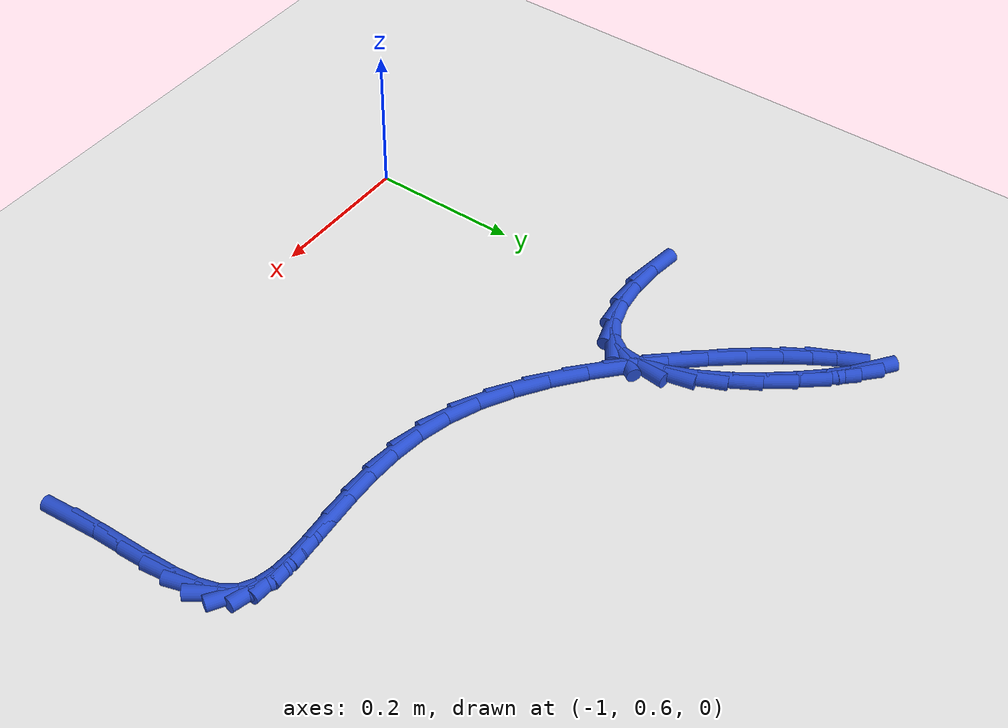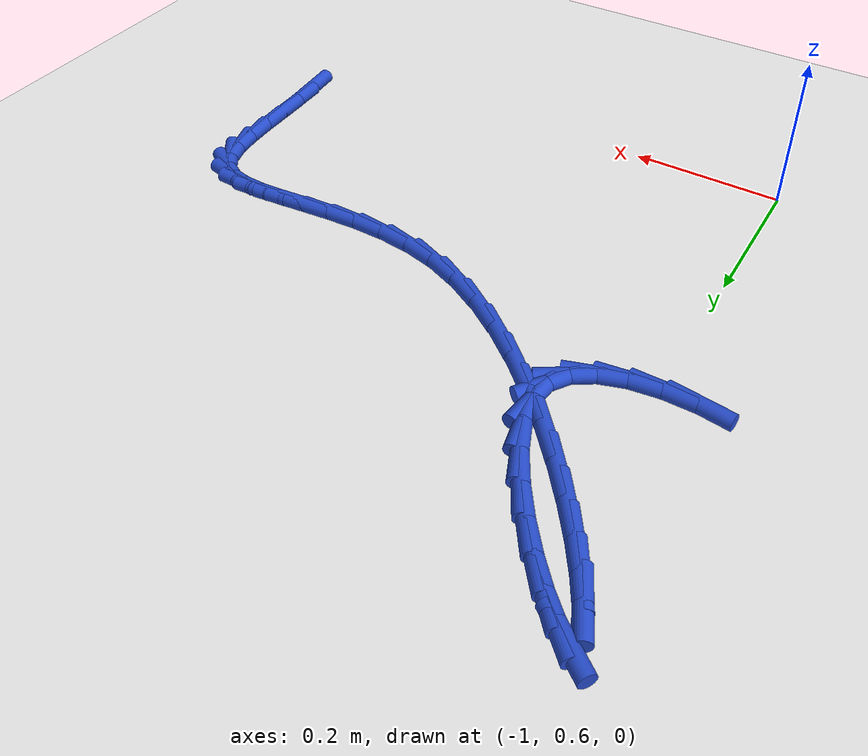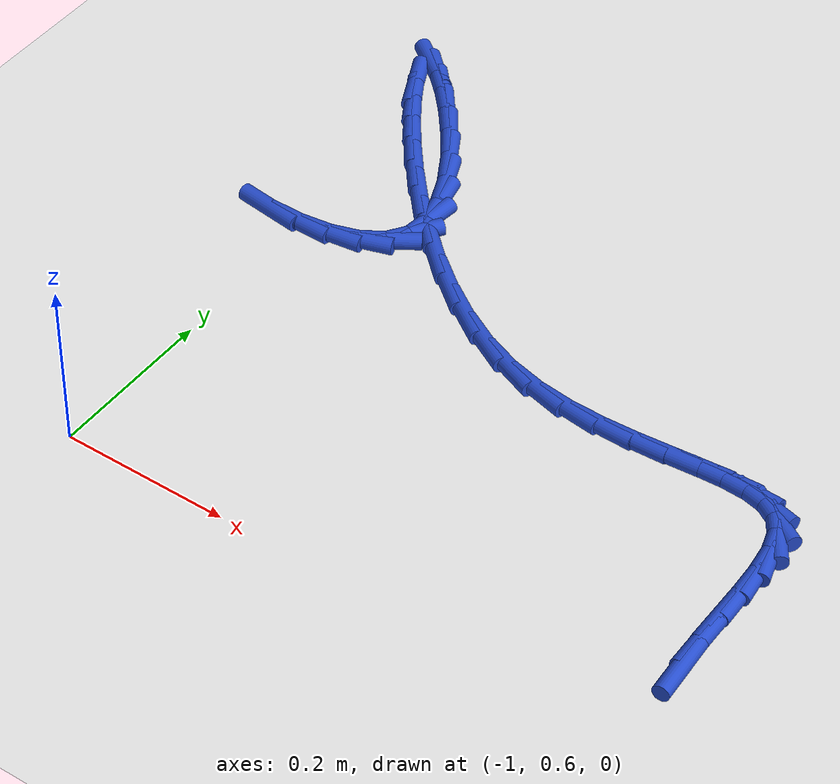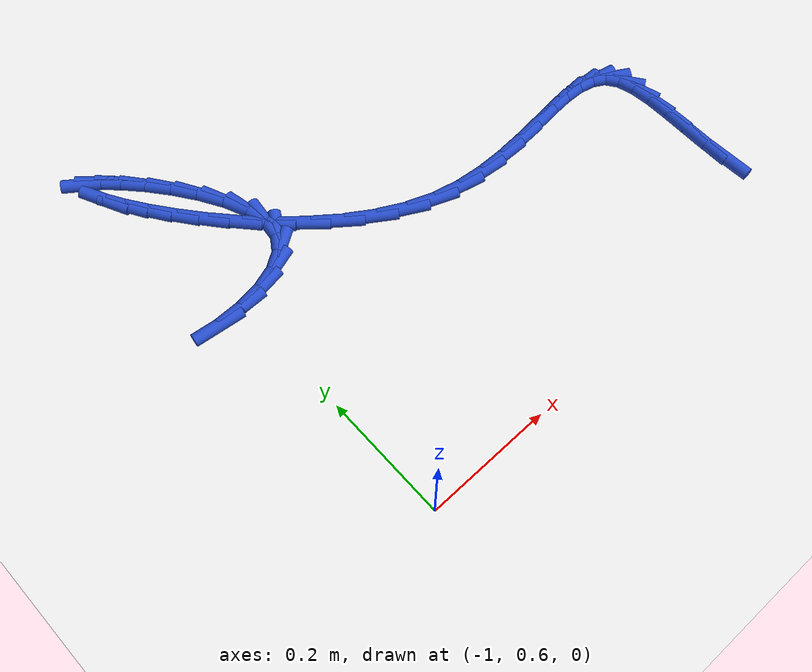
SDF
<sdf version="1.6">
 <world name="default">
  <model name="ground_plane">
   <static>1</static>
   <link name="link">
    <collision name="collision">
     <geometry><plane><normal>0 0 1</normal><size>100 100</size></plane></geometry>
     <surface><friction><ode><mu>100</mu><mu2>50</mu2></ode></friction></surface>
    </collision>
    <visual name="visual">
     <cast_shadows>0</cast_shadows>
     <geometry><plane><normal>0 0 1</normal><size>100 100</size></plane></geometry>
     <material>
      <script><uri>file://media/materials/scripts/gazebo.material</uri><name>Gazebo/WhiteGlow</name></script>
     </material>
    </visual>
   </link>
  </model>
  <model name="line">
   <link name="link_23">
    <pose>-0.3080963227162937 0.6952159774258417 0.01 0 1.57 -1.4997063180696923</pose>
    <collision name="collision">
     <geometry><cylinder><radius>0.01</radius><length>0.08</length></cylinder></geometry>
    </collision>
    <visual name="visual">
     <material>
      <script><name>Gazebo/Blue</name><uri>file://media/materials/scripts/gazebo.material</uri></script>
     </material>
     <geometry><cylinder><radius>0.01</radius><length>0.08</length></cylinder></geometry>
    </visual>
   </link>
   <link name="link_24">
    <pose>-0.31083687575884517 0.733701480655925 0.01 0 1.57 -1.5477143105425735</pose>
    <collision name="collision">
     <geometry><cylinder><radius>0.01</radius><length>0.08</length></cylinder></geometry>
    </collision>
    <visual name="visual">
     <material>
      <script><name>Gazebo/Blue</name><uri>file://media/materials/scripts/gazebo.material</uri></script>
     </material>
     <geometry><cylinder><radius>0.01</radius><length>0.08</length></cylinder></geometry>
    </visual>
   </link>
   <link name="link_25">
    <pose>-0.3117316999992263 0.7724617566341369 0.01 0 1.57 -1.5579819994210853</pose>
    <collision name="collision">
     <geometry><cylinder><radius>0.01</radius><length>0.08</length></cylinder></geometry>
    </collision>
    <visual name="visual">
     <material>
      <script><name>Gazebo/Blue</name><uri>file://media/materials/scripts/gazebo.material</uri></script>
     </material>
     <geometry><cylinder><radius>0.01</radius><length>0.08</length></cylinder></geometry>
    </visual>
   </link>
   <link name="link_26">
    <pose>-0.31221304113187165 0.8100224316341413 0.01 0 1.57 -1.5278234976914895</pose>
    <collision name="collision">
     <geometry><cylinder><radius>0.01</radius><length>0.08</length></cylinder></geometry>
    </collision>
    <visual name="visual">
     <material>
      <script><name>Gazebo/Blue</name><uri>file://media/materials/scripts/gazebo.material</uri></script>
     </material>
     <geometry><cylinder><radius>0.01</radius><length>0.08</length></cylinder></geometry>
    </visual>
   </link>
   <link name="link_27">
    <pose>-0.31371314485121593 0.8449091319296029 0.01 0 1.57 -1.4429571897700708</pose>
    <collision name="collision">
     <geometry><cylinder><radius>0.01</radius><length>0.08</length></cylinder></geometry>
    </collision>
    <visual name="visual">
     <material>
      <script><name>Gazebo/Blue</name><uri>file://media/materials/scripts/gazebo.material</uri></script>
     </material>
     <geometry><cylinder><radius>0.01</radius><length>0.08</length></cylinder></geometry>
    </visual>
   </link>
   <link name="link_28">
    <pose>-0.31766425685169386 0.8756474837941864 0.01 0 1.57 -1.2684291036820492</pose>
    <collision name="collision">
     <geometry><cylinder><radius>0.01</radius><length>0.08</length></cylinder></geometry>
    </collision>
    <visual name="visual">
     <material>
      <script><name>Gazebo/Blue</name><uri>file://media/materials/scripts/gazebo.material</uri></script>
     </material>
     <geometry><cylinder><radius>0.01</radius><length>0.08</length></cylinder></geometry>
    </visual>
   </link>
   <link name="link_29">
    <pose>-0.32549862282774 0.900763113501556 0.01 0 1.57 -0.9441774064784049</pose>
    <collision name="collision">
     <geometry><cylinder><radius>0.01</radius><length>0.08</length></cylinder></geometry>
    </collision>
    <visual name="visual">
     <material>
      <script><name>Gazebo/Blue</name><uri>file://media/materials/scripts/gazebo.material</uri></script>
     </material>
     <geometry><cylinder><radius>0.01</radius><length>0.08</length></cylinder></geometry>
    </visual>
   </link>
   <link name="link_30">
    <pose>-0.33859656596574617 0.9188554707817513 0.01 0 1.57 -0.5353127438071704</pose>
    <collision name="collision">
     <geometry><cylinder><radius>0.01</radius><length>0.08</length></cylinder></geometry>
    </collision>
    <visual name="visual">
     <material>
      <script><name>Gazebo/Blue</name><uri>file://media/materials/scripts/gazebo.material</uri></script>
     </material>
     <geometry><cylinder><radius>0.01</radius><length>0.08</length></cylinder></geometry>
    </visual>
   </link>
   <link name="link_31">
    <pose>-0.3573260009029215 0.9299634485115581 0.01 0 1.57 -0.22589252579197075</pose>
    <collision name="collision">
     <geometry><cylinder><radius>0.01</radius><length>0.08</length></cylinder></geometry>
    </collision>
    <visual name="visual">
     <material>
      <script><name>Gazebo/Blue</name><uri>file://media/materials/scripts/gazebo.material</uri></script>
     </material>
     <geometry><cylinder><radius>0.01</radius><length>0.08</length></cylinder></geometry>
    </visual>
   </link>
   <link name="link_32">
    <pose>-0.38113418991144293 0.9354349237110244 0.01 0 1.57 -0.043452407957987015</pose>
    <collision name="collision">
     <geometry><cylinder><radius>0.01</radius><length>0.08</length></cylinder></geometry>
    </collision>
    <visual name="visual">
     <material>
      <script><name>Gazebo/Blue</name><uri>file://media/materials/scripts/gazebo.material</uri></script>
     </material>
     <geometry><cylinder><radius>0.01</radius><length>0.08</length></cylinder></geometry>
    </visual>
   </link>
   <link name="link_33">
    <pose>-0.409434875931818 0.9366654312081971 0.01 0 1.57 0.05010021698335467</pose>
    <collision name="collision">
     <geometry><cylinder><radius>0.01</radius><length>0.08</length></cylinder></geometry>
    </collision>
    <visual name="visual">
     <material>
      <script><name>Gazebo/Blue</name><uri>file://media/materials/scripts/gazebo.material</uri></script>
     </material>
     <geometry><cylinder><radius>0.01</radius><length>0.08</length></cylinder></geometry>
    </visual>
   </link>
   <link name="link_34">
    <pose>-0.4416418019045541 0.9350505058311243 0.01 0 1.57 0.08605460967609724</pose>
    <collision name="collision">
     <geometry><cylinder><radius>0.01</radius><length>0.08</length></cylinder></geometry>
    </collision>
    <visual name="visual">
     <material>
      <script><name>Gazebo/Blue</name><uri>file://media/materials/scripts/gazebo.material</uri></script>
     </material>
     <geometry><cylinder><radius>0.01</radius><length>0.08</length></cylinder></geometry>
    </visual>
   </link>
   <link name="link_35">
    <pose>-0.4771687107701588 0.9319856824078534 0.01 0 1.57 0.08134480170607795</pose>
    <collision name="collision">
     <geometry><cylinder><radius>0.01</radius><length>0.08</length></cylinder></geometry>
    </collision>
    <visual name="visual">
     <material>
      <script><name>Gazebo/Blue</name><uri>file://media/materials/scripts/gazebo.material</uri></script>
     </material>
     <geometry><cylinder><radius>0.01</radius><length>0.08</length></cylinder></geometry>
    </visual>
   </link>
   <link name="link_36">
    <pose>-0.5154293454691394 0.928866495766433 0.01 0 1.57 0.04397308267729125</pose>
    <collision name="collision">
     <geometry><cylinder><radius>0.01</radius><length>0.08</length></cylinder></geometry>
    </collision>
    <visual name="visual">
     <material>
      <script><name>Gazebo/Blue</name><uri>file://media/materials/scripts/gazebo.material</uri></script>
     </material>
     <geometry><cylinder><radius>0.01</radius><length>0.08</length></cylinder></geometry>
    </visual>
   </link>
   <link name="link_37">
    <pose>-0.5558374489420034 0.9270884807349098 0.01 0 1.57 -0.02283870274848913</pose>
    <collision name="collision">
     <geometry><cylinder><radius>0.01</radius><length>0.08</length></cylinder></geometry>
    </collision>
    <visual name="visual">
     <material>
      <script><name>Gazebo/Blue</name><uri>file://media/materials/scripts/gazebo.material</uri></script>
     </material>
     <geometry><cylinder><radius>0.01</radius><length>0.08</length></cylinder></geometry>
    </visual>
   </link>
   <link name="link_38">
    <pose>-0.5978067641292586 0.928047172141332 0.01 0 1.57 -0.11799672751825001</pose>
    <collision name="collision">
     <geometry><cylinder><radius>0.01</radius><length>0.08</length></cylinder></geometry>
    </collision>
    <visual name="visual">
     <material>
      <script><name>Gazebo/Blue</name><uri>file://media/materials/scripts/gazebo.material</uri></script>
     </material>
     <geometry><cylinder><radius>0.01</radius><length>0.08</length></cylinder></geometry>
    </visual>
   </link>
   <link name="link_39">
    <pose>-0.6407510339714122 0.9331381048137477 0.01 0 1.57 -0.24031368107714585</pose>
    <collision name="collision">
     <geometry><cylinder><radius>0.01</radius><length>0.08</length></cylinder></geometry>
    </collision>
    <visual name="visual">
     <material>
      <script><name>Gazebo/Blue</name><uri>file://media/materials/scripts/gazebo.material</uri></script>
     </material>
     <geometry><cylinder><radius>0.01</radius><length>0.08</length></cylinder></geometry>
    </visual>
   </link>
   <link name="link_40">
    <pose>-0.6840840014089713 0.9437568135802041 0.01 0 1.57 -0.3784812080881994</pose>
    <collision name="collision">
     <geometry><cylinder><radius>0.01</radius><length>0.08</length></cylinder></geometry>
    </collision>
    <visual name="visual">
     <material>
      <script><name>Gazebo/Blue</name><uri>file://media/materials/scripts/gazebo.material</uri></script>
     </material>
     <geometry><cylinder><radius>0.01</radius><length>0.08</length></cylinder></geometry>
    </visual>
   </link>
   <link name="link_41">
    <pose>-0.7272371026917992 0.9609167609133242 0.01 0 1.57 -0.49697059487971396</pose>
    <collision name="collision">
     <geometry><cylinder><radius>0.01</radius><length>0.08</length></cylinder></geometry>
    </collision>
    <visual name="visual">
     <material>
      <script><name>Gazebo/Blue</name><uri>file://media/materials/scripts/gazebo.material</uri></script>
     </material>
     <geometry><cylinder><radius>0.01</radius><length>0.08</length></cylinder></geometry>
    </visual>
   </link>
   <link name="link_42">
    <pose>-0.7697192656213465 0.9839580434361594 0.01 0 1.57 -0.5920745081669407</pose>
    <collision name="collision">
     <geometry><cylinder><radius>0.01</radius><length>0.08</length></cylinder></geometry>
    </collision>
    <visual name="visual">
     <material>
      <script><name>Gazebo/Blue</name><uri>file://media/materials/scripts/gazebo.material</uri></script>
     </material>
     <geometry><cylinder><radius>0.01</radius><length>0.08</length></cylinder></geometry>
    </visual>
   </link>
   <link name="link_43">
    <pose>-0.8110606268978519 1.011762769175438 0.01 0 1.57 -0.6695893870224425</pose>
    <collision name="collision">
     <geometry><cylinder><radius>0.01</radius><length>0.08</length></cylinder></geometry>
    </collision>
    <visual name="visual">
     <material>
      <script><name>Gazebo/Blue</name><uri>file://media/materials/scripts/gazebo.material</uri></script>
     </material>
     <geometry><cylinder><radius>0.01</radius><length>0.08</length></cylinder></geometry>
    </visual>
   </link>
   <link name="link_44">
    <pose>-0.8507913237565817 1.0432130346044073 0.01 0 1.57 -0.7341744516920327</pose>
    <collision name="collision">
     <geometry><cylinder><radius>0.01</radius><length>0.08</length></cylinder></geometry>
    </collision>
    <visual name="visual">
     <material>
      <script><name>Gazebo/Blue</name><uri>file://media/materials/scripts/gazebo.material</uri></script>
     </material>
     <geometry><cylinder><radius>0.01</radius><length>0.08</length></cylinder></geometry>
    </visual>
   </link>
   <link name="link_45">
    <pose>-0.8884414934328029 1.077190936196314 0.01 0 1.57 -0.789481912293412</pose>
    <collision name="collision">
     <geometry><cylinder><radius>0.01</radius><length>0.08</length></cylinder></geometry>
    </collision>
    <visual name="visual">
     <material>
      <script><name>Gazebo/Blue</name><uri>file://media/materials/scripts/gazebo.material</uri></script>
     </material>
     <geometry><cylinder><radius>0.01</radius><length>0.08</length></cylinder></geometry>
    </visual>
   </link>
   <link name="link_46">
    <pose>-0.9235412731617817 1.1125785704244047 0.01 0 1.57 -0.8384768016143008</pose>
    <collision name="collision">
     <geometry><cylinder><radius>0.01</radius><length>0.08</length></cylinder></geometry>
    </collision>
    <visual name="visual">
     <material>
      <script><name>Gazebo/Blue</name><uri>file://media/materials/scripts/gazebo.material</uri></script>
     </material>
     <geometry><cylinder><radius>0.01</radius><length>0.08</length></cylinder></geometry>
    </visual>
   </link>
   <link name="link_47">
    <pose>-0.9556208001787851 1.1482580337619273 0.01 0 1.57 -0.8838134425617956</pose>
    <collision name="collision">
     <geometry><cylinder><radius>0.01</radius><length>0.08</length></cylinder></geometry>
    </collision>
    <visual name="visual">
     <material>
      <script><name>Gazebo/Blue</name><uri>file://media/materials/scripts/gazebo.material</uri></script>
     </material>
     <geometry><cylinder><radius>0.01</radius><length>0.08</length></cylinder></geometry>
    </visual>
   </link>
   <link name="link_48">
    <pose>-0.984210211719079 1.1831114226821278 0.01 0 1.57 -0.928319417941898</pose>
    <collision name="collision">
     <geometry><cylinder><radius>0.01</radius><length>0.08</length></cylinder></geometry>
    </collision>
    <visual name="visual">
     <material>
      <script><name>Gazebo/Blue</name><uri>file://media/materials/scripts/gazebo.material</uri></script>
     </material>
     <geometry><cylinder><radius>0.01</radius><length>0.08</length></cylinder></geometry>
    </visual>
   </link>
   <link name="link_49">
    <pose>-1.0088396450179302 1.2160208336582534 0.01 0 1.57 -0.9758390444276765</pose>
    <collision name="collision">
     <geometry><cylinder><radius>0.01</radius><length>0.08</length></cylinder></geometry>
    </collision>
    <visual name="visual">
     <material>
      <script><name>Gazebo/Blue</name><uri>file://media/materials/scripts/gazebo.material</uri></script>
     </material>
     <geometry><cylinder><radius>0.01</radius><length>0.08</length></cylinder></geometry>
    </visual>
   </link>
   <link name="link_50">
    <pose>-1.0290392373106059 1.2458683631635514 0.01 0 1.57 -1.0332682072119705</pose>
    <collision name="collision">
     <geometry><cylinder><radius>0.01</radius><length>0.08</length></cylinder></geometry>
    </collision>
    <visual name="visual">
     <material>
      <script><name>Gazebo/Blue</name><uri>file://media/materials/scripts/gazebo.material</uri></script>
     </material>
     <geometry><cylinder><radius>0.01</radius><length>0.08</length></cylinder></geometry>
    </visual>
   </link>
   <link name="link_51">
    <pose>-1.0443391258323713 1.2715361076712686 0.01 0 1.57 -1.1172018160227448</pose>
    <collision name="collision">
     <geometry><cylinder><radius>0.01</radius><length>0.08</length></cylinder></geometry>
    </collision>
    <visual name="visual">
     <material>
      <script><name>Gazebo/Blue</name><uri>file://media/materials/scripts/gazebo.material</uri></script>
     </material>
     <geometry><cylinder><radius>0.01</radius><length>0.08</length></cylinder></geometry>
    </visual>
   </link>
   <link name="link_55">
    <pose>-1.04714438691567 1.3100511651912679 0.01 0 1.57 -0.6329410903399565</pose>
    <collision name="collision">
     <geometry><cylinder><radius>0.01</radius><length>0.08</length></cylinder></geometry>
    </collision>
    <visual name="visual">
     <material>
      <script><name>Gazebo/Blue</name><uri>file://media/materials/scripts/gazebo.material</uri></script>
     </material>
     <geometry><cylinder><radius>0.01</radius><length>0.08</length></cylinder></geometry>
    </visual>
   </link>
   <link name="link_56">
    <pose>-1.0311285962101349 1.298301516335245 0.01 0 1.57 -0.7547785060208769</pose>
    <collision name="collision">
     <geometry><cylinder><radius>0.01</radius><length>0.08</length></cylinder></geometry>
    </collision>
    <visual name="visual">
     <material>
      <script><name>Gazebo/Blue</name><uri>file://media/materials/scripts/gazebo.material</uri></script>
     </material>
     <geometry><cylinder><radius>0.01</radius><length>0.08</length></cylinder></geometry>
    </visual>
   </link>
   <link name="link_57">
    <pose>-1.0095809501927824 1.2780346176361002 0.01 0 1.57 -0.8264151021963211</pose>
    <collision name="collision">
     <geometry><cylinder><radius>0.01</radius><length>0.08</length></cylinder></geometry>
    </collision>
    <visual name="visual">
     <material>
      <script><name>Gazebo/Blue</name><uri>file://media/materials/scripts/gazebo.material</uri></script>
     </material>
     <geometry><cylinder><radius>0.01</radius><length>0.08</length></cylinder></geometry>
    </visual>
   </link>
   <link name="link_58">
    <pose>-0.9847690223698371 1.2510989716375733 0.01 0 1.57 -0.8883562099774703</pose>
    <collision name="collision">
     <geometry><cylinder><radius>0.01</radius><length>0.08</length></cylinder></geometry>
    </collision>
    <visual name="visual">
     <material>
      <script><name>Gazebo/Blue</name><uri>file://media/materials/scripts/gazebo.material</uri></script>
     </material>
     <geometry><cylinder><radius>0.01</radius><length>0.08</length></cylinder></geometry>
    </visual>
   </link>
   <link name="link_59">
    <pose>-0.958964242167385 1.2193472593273762 0.01 0 1.57 -0.9557215106294031</pose>
    <collision name="collision">
     <geometry><cylinder><radius>0.01</radius><length>0.08</length></cylinder></geometry>
    </collision>
    <visual name="visual">
     <material>
      <script><name>Gazebo/Blue</name><uri>file://media/materials/scripts/gazebo.material</uri></script>
     </material>
     <geometry><cylinder><radius>0.01</radius><length>0.08</length></cylinder></geometry>
    </visual>
   </link>
   <link name="link_60">
    <pose>-0.9344380390115125 1.1846321616932216 0.01 0 1.57 -1.0411028806708467</pose>
    <collision name="collision">
     <geometry><cylinder><radius>0.01</radius><length>0.08</length></cylinder></geometry>
    </collision>
    <visual name="visual">
     <material>
      <script><name>Gazebo/Blue</name><uri>file://media/materials/scripts/gazebo.material</uri></script>
     </material>
     <geometry><cylinder><radius>0.01</radius><length>0.08</length></cylinder></geometry>
    </visual>
   </link>
   <link name="link_61">
    <pose>-0.9134618423283051 1.1488063597228206 0.01 0 1.57 -1.1630464603140283</pose>
    <collision name="collision">
     <geometry><cylinder><radius>0.01</radius><length>0.08</length></cylinder></geometry>
    </collision>
    <visual name="visual">
     <material>
      <script><name>Gazebo/Blue</name><uri>file://media/materials/scripts/gazebo.material</uri></script>
     </material>
     <geometry><cylinder><radius>0.01</radius><length>0.08</length></cylinder></geometry>
    </visual>
   </link>
   <link name="link_62">
    <pose>-0.8983070815438486 1.1137225344038848 0.01 0 1.57 -1.3567640663782528</pose>
    <collision name="collision">
     <geometry><cylinder><radius>0.01</radius><length>0.08</length></cylinder></geometry>
    </collision>
    <visual name="visual">
     <material>
      <script><name>Gazebo/Blue</name><uri>file://media/materials/scripts/gazebo.material</uri></script>
     </material>
     <geometry><cylinder><radius>0.01</radius><length>0.08</length></cylinder></geometry>
    </visual>
   </link>
   <link name="link_63">
    <pose>-0.8912451860842298 1.0812333667241274 0.01 0 1.57 1.453570218956255</pose>
    <collision name="collision">
     <geometry><cylinder><radius>0.01</radius><length>0.08</length></cylinder></geometry>
    </collision>
    <visual name="visual">
     <material>
      <script><name>Gazebo/Blue</name><uri>file://media/materials/scripts/gazebo.material</uri></script>
     </material>
     <geometry><cylinder><radius>0.01</radius><length>0.08</length></cylinder></geometry>
    </visual>
   </link>
   <link name="link_64">
    <pose>-0.8945475626776275 1.0531915274551265 0.01 0 1.57 0.9723710007917653</pose>
    <collision name="collision">
     <geometry><cylinder><radius>0.01</radius><length>0.08</length></cylinder></geometry>
    </collision>
    <visual name="visual">
     <material>
      <script><name>Gazebo/Blue</name><uri>file://media/materials/scripts/gazebo.material</uri></script>
     </material>
     <geometry><cylinder><radius>0.01</radius><length>0.08</length></cylinder></geometry>
    </visual>
   </link>
   <link name="link_65">
    <pose>-0.9096333098303867 1.0310660707435844 0.01 0 1.57 0.5700020703874724</pose>
    <collision name="collision">
     <geometry><cylinder><radius>0.01</radius><length>0.08</length></cylinder></geometry>
    </collision>
    <visual name="visual">
     <material>
      <script><name>Gazebo/Blue</name><uri>file://media/materials/scripts/gazebo.material</uri></script>
     </material>
     <geometry><cylinder><radius>0.01</radius><length>0.08</length></cylinder></geometry>
    </visual>
   </link>
   <link name="link_66">
    <pose>-0.9348127047340459 1.014926796910443 0.01 0 1.57 0.30645260078980635</pose>
    <collision name="collision">
     <geometry><cylinder><radius>0.01</radius><length>0.08</length></cylinder></geometry>
    </collision>
    <visual name="visual">
     <material>
      <script><name>Gazebo/Blue</name><uri>file://media/materials/scripts/gazebo.material</uri></script>
     </material>
     <geometry><cylinder><radius>0.01</radius><length>0.08</length></cylinder></geometry>
    </visual>
   </link>
   <link name="link_67">
    <pose>-0.967687410351808 1.0045245650865335 0.01 0 1.57 0.12803854618821603</pose>
    <collision name="collision">
     <geometry><cylinder><radius>0.01</radius><length>0.08</length></cylinder></geometry>
    </collision>
    <visual name="visual">
     <material>
      <script><name>Gazebo/Blue</name><uri>file://media/materials/scripts/gazebo.material</uri></script>
     </material>
     <geometry><cylinder><radius>0.01</radius><length>0.08</length></cylinder></geometry>
    </visual>
   </link>
   <link name="link_68">
    <pose>-1.0058590896468733 0.999610234402685 0.01 0 1.57 -0.00789920485799322</pose>
    <collision name="collision">
     <geometry><cylinder><radius>0.01</radius><length>0.08</length></cylinder></geometry>
    </collision>
    <visual name="visual">
     <material>
      <script><name>Gazebo/Blue</name><uri>file://media/materials/scripts/gazebo.material</uri></script>
     </material>
     <geometry><cylinder><radius>0.01</radius><length>0.08</length></cylinder></geometry>
    </visual>
   </link>
   <link name="link_69">
    <pose>-1.046929405582444 0.999934663989729 0.01 0 1.57 -0.12714230599950918</pose>
    <collision name="collision">
     <geometry><cylinder><radius>0.01</radius><length>0.08</length></cylinder></geometry>
    </collision>
    <visual name="visual">
     <material>
      <script><name>Gazebo/Blue</name><uri>file://media/materials/scripts/gazebo.material</uri></script>
     </material>
     <geometry><cylinder><radius>0.01</radius><length>0.08</length></cylinder></geometry>
    </visual>
   </link>
  </model>
 </world>
</sdf>
